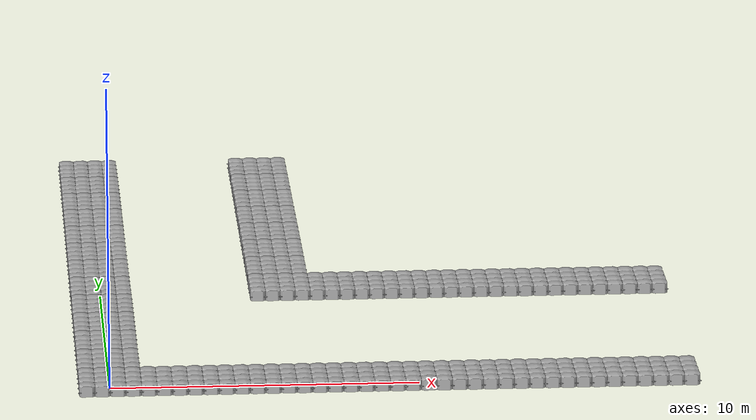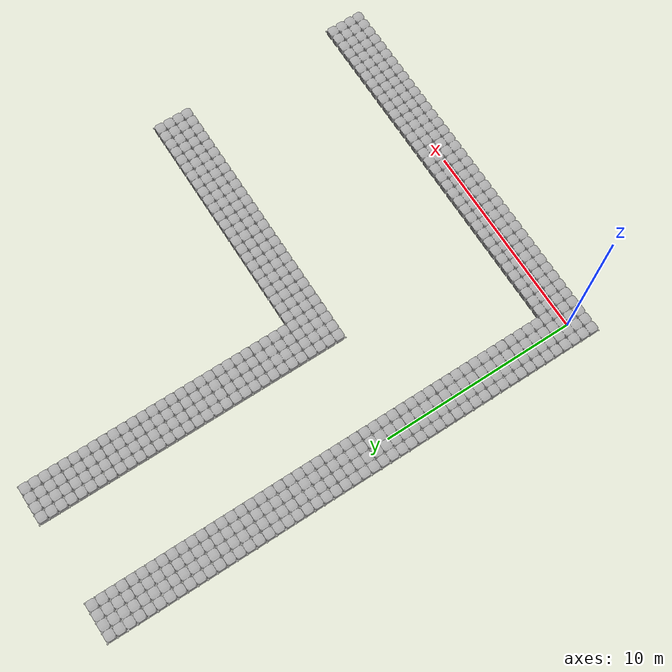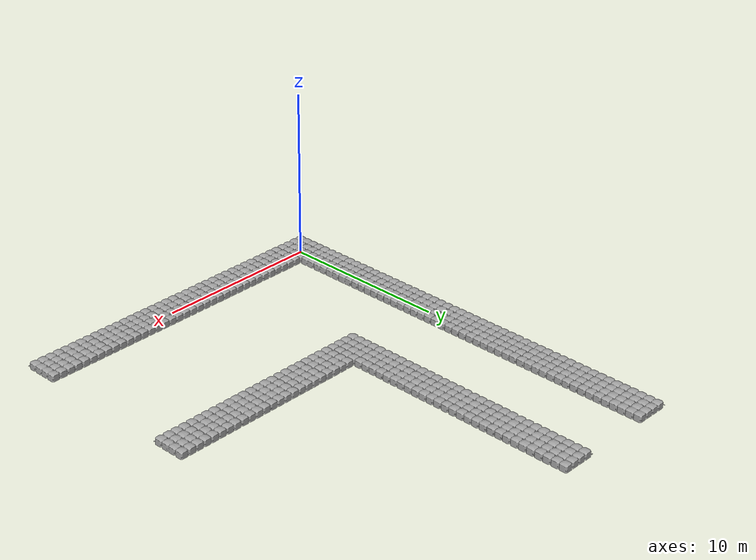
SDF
<?xml version="1.0" ?>
<sdf version="1.6">

  <model name="robotx_dock_2016_base">
    <selfCollide>false</selfCollide>

    <!-- Row 0 -->
    <include>
      <name>dock_block_0_0</name>
      <pose>0 0 0.25 0 0 0</pose>
        <uri>model://dock_block_4x4_dynamic</uri>
    </include>
    <include>
      <name>dock_block_0_1</name>
      <pose>0 2 0.25 0 0 0</pose>
        <uri>model://dock_block_4x4_dynamic</uri>
    </include>
    <include>
      <name>dock_block_0_2</name>
      <pose>0 4 0.25 0 0 0</pose>
        <uri>model://dock_block_4x4_dynamic</uri>
    </include>
    <include>
      <name>dock_block_0_3</name>
      <pose>0 6 0.25 0 0 0</pose>
        <uri>model://dock_block_4x4_dynamic</uri>
    </include>
    <include>
      <name>dock_block_0_4</name>
      <pose>0 8 0.25 0 0 0</pose>
        <uri>model://dock_block_4x4_dynamic</uri>
    </include>
    <include>
      <name>dock_block_0_5</name>
      <pose>0 10 0.25 0 0 0</pose>
        <uri>model://dock_block_4x4_dynamic</uri>
    </include>
    <include>
      <name>dock_block_0_6</name>
      <pose>0 12 0.25 0 0 0</pose>
        <uri>model://dock_block_4x4_dynamic</uri>
    </include>
    <include>
      <name>dock_block_0_7</name>
      <pose>0 14 0.25 0 0 0</pose>
        <uri>model://dock_block_4x4_dynamic</uri>
    </include>
    <include>
      <name>dock_block_0_8</name>
      <pose>0 16 0.25 0 0 0</pose>
        <uri>model://dock_block_4x4_dynamic</uri>
    </include>
    <include>
      <name>dock_block_0_9</name>
      <pose>0 18 0.25 0 0 0</pose>
        <uri>model://dock_block_4x4_dynamic</uri>
    </include>
    <include>
      <name>dock_block_0_10</name>
      <pose>0 20 0.25 0 0 0</pose>
        <uri>model://dock_block_4x4_dynamic</uri>
    </include>
    <include>
      <name>dock_block_0_11</name>
      <pose>0 22 0.25 0 0 0</pose>
        <uri>model://dock_block_4x4_dynamic</uri>
    </include>
    <include>
      <name>dock_block_0_12</name>
      <pose>0 24 0.25 0 0 0</pose>
        <uri>model://dock_block_4x4_dynamic</uri>
    </include>

    <!-- Row 1 -->
    <include>
      <name>dock_block_1_0</name>
      <pose>2 0 0.25 0 0 0</pose>
        <uri>model://dock_block_4x4_dynamic</uri>
    </include>

    <!-- Row 2 -->
    <include>
      <name>dock_block_2_0</name>
      <pose>4 0 0.25 0 0 0</pose>
        <uri>model://dock_block_4x4_dynamic</uri>
    </include>

    <!-- Row 3 -->
    <include>
      <name>dock_block_3_0</name>
      <pose>6 0 0.25 0 0 0</pose>
        <uri>model://dock_block_4x4_dynamic</uri>
    </include>
    <include>
      <name>dock_block_3_5</name>
      <pose>6 10 0.25 0 0 0</pose>
        <uri>model://dock_block_4x4_dynamic</uri>
    </include>
    <include>
      <name>dock_block_3_6</name>
      <pose>6 12 0.25 0 0 0</pose>
        <uri>model://dock_block_4x4_dynamic</uri>
    </include>
    <include>
      <name>dock_block_3_7</name>
      <pose>6 14 0.25 0 0 0</pose>
        <uri>model://dock_block_4x4_dynamic</uri>
    </include>
    <include>
      <name>dock_block_3_8</name>
      <pose>6 16 0.25 0 0 0</pose>
        <uri>model://dock_block_4x4_dynamic</uri>
    </include>
    <include>
      <name>dock_block_3_9</name>
      <pose>6 18 0.25 0 0 0</pose>
        <uri>model://dock_block_4x4_dynamic</uri>
    </include>
    <include>
      <name>dock_block_3_10</name>
      <pose>6 20 0.25 0 0 0</pose>
        <uri>model://dock_block_4x4_dynamic</uri>
    </include>
    <include>
      <name>dock_block_3_11</name>
      <pose>6 22 0.25 0 0 0</pose>
        <uri>model://dock_block_4x4_dynamic</uri>
    </include>
    <include>
      <name>dock_block_3_12</name>
      <pose>6 24 0.25 0 0 0</pose>
        <uri>model://dock_block_4x4_dynamic</uri>
    </include>

    <!-- Row 4 -->
    <include>
      <name>dock_block_4_0</name>
      <pose>8 0 0.25 0 0 0</pose>
        <uri>model://dock_block_4x4_dynamic</uri>
    </include>
    <include>
      <name>dock_block_4_5</name>
      <pose>8 10 0.25 0 0 0</pose>
        <uri>model://dock_block_4x4_dynamic</uri>
    </include>

    <!-- Row 5 -->
    <include>
      <name>dock_block_5_0</name>
      <pose>10 0 0.25 0 0 0</pose>
        <uri>model://dock_block_4x4_dynamic</uri>
    </include>
    <include>
      <name>dock_block_5_5</name>
      <pose>10 10 0.25 0 0 0</pose>
        <uri>model://dock_block_4x4_dynamic</uri>
    </include>

    <!-- Row 6 -->
    <include>
      <name>dock_block_6_0</name>
      <pose>12 0 0.25 0 0 0</pose>
        <uri>model://dock_block_4x4_dynamic</uri>
    </include>
    <include>
      <name>dock_block_6_5</name>
      <pose>12 10 0.25 0 0 0</pose>
        <uri>model://dock_block_4x4_dynamic</uri>
    </include>

    <!-- Row 7 -->
    <include>
      <name>dock_block_7_0</name>
      <pose>14 0 0.25 0 0 0</pose>
        <uri>model://dock_block_4x4_dynamic</uri>
    </include>
    <include>
      <name>dock_block_7_5</name>
      <pose>14 10 0.25 0 0 0</pose>
        <uri>model://dock_block_4x4_dynamic</uri>
    </include>

    <!-- Row 8 -->
    <include>
      <name>dock_block_8_0</name>
      <pose>16 0 0.25 0 0 0</pose>
        <uri>model://dock_block_4x4_dynamic</uri>
    </include>
    <include>
      <name>dock_block_8_5</name>
      <pose>16 10 0.25 0 0 0</pose>
        <uri>model://dock_block_4x4_dynamic</uri>
    </include>

    <!-- Row 9 -->
    <include>
      <name>dock_block_9_0</name>
      <pose>18 0 0.25 0 0 0</pose>
        <uri>model://dock_block_4x4_dynamic</uri>
    </include>
    <include>
      <name>dock_block_9_5</name>
      <pose>18 10 0.25 0 0 0</pose>
        <uri>model://dock_block_4x4_dynamic</uri>
    </include>

    <!-- Add joints across rows -->

    <!-- Row 0 -->
    <joint name="0_0_to_0_1" type="revolute">
      <pose> 0  1.0 0 0 0 0</pose>
      <parent>dock_block_0_1::link</parent>
      <child>dock_block_0_0::link</child>
      <axis>
        <limit>
          <lower>-0.1</lower>
          <upper>0.1</upper>
        </limit>
        <xyz>1 0 0</xyz>
      </axis>
    </joint>
    <joint name="0_1_to_0_2" type="revolute">
      <pose> 0  1.0 0 0 0 0</pose>
      <parent>dock_block_0_2::link</parent>
      <child>dock_block_0_1::link</child>
      <axis>
        <limit>
          <lower>-0.1</lower>
          <upper>0.1</upper>
        </limit>
        <xyz>1 0 0</xyz>
      </axis>
    </joint>
    <joint name="0_2_to_0_3" type="revolute">
      <pose> 0  1.0 0 0 0 0</pose>
      <parent>dock_block_0_3::link</parent>
      <child>dock_block_0_2::link</child>
      <axis>
        <limit>
          <lower>-0.1</lower>
          <upper>0.1</upper>
        </limit>
        <xyz>1 0 0</xyz>
      </axis>
    </joint>
    <joint name="0_3_to_0_4" type="revolute">
      <pose> 0  1.0 0 0 0 0</pose>
      <parent>dock_block_0_4::link</parent>
      <child>dock_block_0_3::link</child>
      <axis>
        <limit>
          <lower>-0.1</lower>
          <upper>0.1</upper>
        </limit>
        <xyz>1 0 0</xyz>
      </axis>
    </joint>
    <joint name="0_4_to_0_5" type="revolute">
      <pose> 0  1.0 0 0 0 0</pose>
      <parent>dock_block_0_5::link</parent>
      <child>dock_block_0_4::link</child>
      <axis>
        <limit>
          <lower>-0.1</lower>
          <upper>0.1</upper>
        </limit>
        <xyz>1 0 0</xyz>
      </axis>
    </joint>
    <joint name="0_5_to_0_6" type="revolute">
      <pose> 0  1.0 0 0 0 0</pose>
      <parent>dock_block_0_6::link</parent>
      <child>dock_block_0_5::link</child>
      <axis>
        <limit>
          <lower>-0.1</lower>
          <upper>0.1</upper>
        </limit>
        <xyz>1 0 0</xyz>
      </axis>
    </joint>
    <joint name="0_6_to_0_7" type="revolute">
      <pose> 0  1.0 0 0 0 0</pose>
      <parent>dock_block_0_7::link</parent>
      <child>dock_block_0_6::link</child>
      <axis>
        <limit>
          <lower>-0.1</lower>
          <upper>0.1</upper>
        </limit>
        <xyz>1 0 0</xyz>
      </axis>
    </joint>
    <joint name="0_7_to_0_8" type="revolute">
      <pose> 0  1.0 0 0 0 0</pose>
      <parent>dock_block_0_8::link</parent>
      <child>dock_block_0_7::link</child>
      <axis>
        <limit>
          <lower>-0.1</lower>
          <upper>0.1</upper>
        </limit>
        <xyz>1 0 0</xyz>
      </axis>
    </joint>
    <joint name="0_8_to_0_9" type="revolute">
      <pose> 0  1.0 0 0 0 0</pose>
      <parent>dock_block_0_9::link</parent>
      <child>dock_block_0_8::link</child>
      <axis>
        <limit>
          <lower>-0.1</lower>
          <upper>0.1</upper>
        </limit>
        <xyz>1 0 0</xyz>
      </axis>
    </joint>
    <joint name="0_9_to_0_10" type="revolute">
      <pose> 0  1.0 0 0 0 0</pose>
      <parent>dock_block_0_10::link</parent>
      <child>dock_block_0_9::link</child>
      <axis>
        <limit>
          <lower>-0.1</lower>
          <upper>0.1</upper>
        </limit>
        <xyz>1 0 0</xyz>
      </axis>
    </joint>
    <joint name="0_10_to_0_11" type="revolute">
      <pose> 0  1.0 0 0 0 0</pose>
      <parent>dock_block_0_11::link</parent>
      <child>dock_block_0_10::link</child>
      <axis>
        <limit>
          <lower>-0.1</lower>
          <upper>0.1</upper>
        </limit>
        <xyz>1 0 0</xyz>
      </axis>
    </joint>
    <joint name="0_11_to_0_12" type="revolute">
      <pose> 0  1.0 0 0 0 0</pose>
      <parent>dock_block_0_12::link</parent>
      <child>dock_block_0_11::link</child>
      <axis>
        <limit>
          <lower>-0.1</lower>
          <upper>0.1</upper>
        </limit>
        <xyz>1 0 0</xyz>
      </axis>
    </joint>

    <!-- Row 1 -->

    <!-- Row 2 -->

    <!-- Row 3 -->
    <joint name="3_5_to_3_6" type="revolute">
      <pose> 0  1.0 0 0 0 0</pose>
      <parent>dock_block_3_6::link</parent>
      <child>dock_block_3_5::link</child>
      <axis>
        <limit>
          <lower>-0.1</lower>
          <upper>0.1</upper>
        </limit>
        <xyz>1 0 0</xyz>
      </axis>
    </joint>
    <joint name="3_6_to_3_7" type="revolute">
      <pose> 0  1.0 0 0 0 0</pose>
      <parent>dock_block_3_7::link</parent>
      <child>dock_block_3_6::link</child>
      <axis>
        <limit>
          <lower>-0.1</lower>
          <upper>0.1</upper>
        </limit>
        <xyz>1 0 0</xyz>
      </axis>
    </joint>
    <joint name="3_7_to_3_8" type="revolute">
      <pose> 0  1.0 0 0 0 0</pose>
      <parent>dock_block_3_8::link</parent>
      <child>dock_block_3_7::link</child>
      <axis>
        <limit>
          <lower>-0.1</lower>
          <upper>0.1</upper>
        </limit>
        <xyz>1 0 0</xyz>
      </axis>
    </joint>
    <joint name="3_8_to_3_9" type="revolute">
      <pose> 0  1.0 0 0 0 0</pose>
      <parent>dock_block_3_9::link</parent>
      <child>dock_block_3_8::link</child>
      <axis>
        <limit>
          <lower>-0.1</lower>
          <upper>0.1</upper>
        </limit>
        <xyz>1 0 0</xyz>
      </axis>
    </joint>
    <joint name="3_9_to_3_10" type="revolute">
      <pose> 0  1.0 0 0 0 0</pose>
      <parent>dock_block_3_10::link</parent>
      <child>dock_block_3_9::link</child>
      <axis>
        <limit>
          <lower>-0.1</lower>
          <upper>0.1</upper>
        </limit>
        <xyz>1 0 0</xyz>
      </axis>
    </joint>
    <joint name="3_10_to_3_11" type="revolute">
      <pose> 0  1.0 0 0 0 0</pose>
      <parent>dock_block_3_11::link</parent>
      <child>dock_block_3_10::link</child>
      <axis>
        <limit>
          <lower>-0.1</lower>
          <upper>0.1</upper>
        </limit>
        <xyz>1 0 0</xyz>
      </axis>
    </joint>
    <joint name="3_11_to_3_12" type="revolute">
      <pose> 0  1.0 0 0 0 0</pose>
      <parent>dock_block_3_12::link</parent>
      <child>dock_block_3_11::link</child>
      <axis>
        <limit>
          <lower>-0.1</lower>
          <upper>0.1</upper>
        </limit>
        <xyz>1 0 0</xyz>
      </axis>
    </joint>

    <!-- Row 4 -->

    <!-- Row 5 -->

    <!-- Row 6 -->

    <!-- Row 7 -->

    <!-- Row 8 -->

    <!-- Row 9 -->

    <!-- Add joints across columns -->

    <!-- Column 0 -->
    <joint name="1_0_to_0_0" type="revolute">
      <pose> 1.0 0 0 0 0 0</pose>
      <parent>dock_block_1_0::link</parent>
      <child>dock_block_0_0::link</child>
      <axis>
        <limit>
          <lower>-0.1</lower>
          <upper>0.1</upper>
        </limit>
        <xyz>0 1 0</xyz>
      </axis>
    </joint>
    <joint name="2_0_to_1_0" type="revolute">
      <pose> 1.0 0 0 0 0 0</pose>
      <parent>dock_block_2_0::link</parent>
      <child>dock_block_1_0::link</child>
      <axis>
        <limit>
          <lower>-0.1</lower>
          <upper>0.1</upper>
        </limit>
        <xyz>0 1 0</xyz>
      </axis>
    </joint>
    <joint name="3_0_to_2_0" type="revolute">
      <pose> 1.0 0 0 0 0 0</pose>
      <parent>dock_block_3_0::link</parent>
      <child>dock_block_2_0::link</child>
      <axis>
        <limit>
          <lower>-0.1</lower>
          <upper>0.1</upper>
        </limit>
        <xyz>0 1 0</xyz>
      </axis>
    </joint>
    <joint name="4_0_to_3_0" type="revolute">
      <pose> 1.0 0 0 0 0 0</pose>
      <parent>dock_block_4_0::link</parent>
      <child>dock_block_3_0::link</child>
      <axis>
        <limit>
          <lower>-0.1</lower>
          <upper>0.1</upper>
        </limit>
        <xyz>0 1 0</xyz>
      </axis>
    </joint>
    <joint name="5_0_to_4_0" type="revolute">
      <pose> 1.0 0 0 0 0 0</pose>
      <parent>dock_block_5_0::link</parent>
      <child>dock_block_4_0::link</child>
      <axis>
        <limit>
          <lower>-0.1</lower>
          <upper>0.1</upper>
        </limit>
        <xyz>0 1 0</xyz>
      </axis>
    </joint>
    <joint name="6_0_to_5_0" type="revolute">
      <pose> 1.0 0 0 0 0 0</pose>
      <parent>dock_block_6_0::link</parent>
      <child>dock_block_5_0::link</child>
      <axis>
        <limit>
          <lower>-0.1</lower>
          <upper>0.1</upper>
        </limit>
        <xyz>0 1 0</xyz>
      </axis>
    </joint>
    <joint name="7_0_to_6_0" type="revolute">
      <pose> 1.0 0 0 0 0 0</pose>
      <parent>dock_block_7_0::link</parent>
      <child>dock_block_6_0::link</child>
      <axis>
        <limit>
          <lower>-0.1</lower>
          <upper>0.1</upper>
        </limit>
        <xyz>0 1 0</xyz>
      </axis>
    </joint>
    <joint name="8_0_to_7_0" type="revolute">
      <pose> 1.0 0 0 0 0 0</pose>
      <parent>dock_block_8_0::link</parent>
      <child>dock_block_7_0::link</child>
      <axis>
        <limit>
          <lower>-0.1</lower>
          <upper>0.1</upper>
        </limit>
        <xyz>0 1 0</xyz>
      </axis>
    </joint>
    <joint name="9_0_to_8_0" type="revolute">
      <pose> 1.0 0 0 0 0 0</pose>
      <parent>dock_block_9_0::link</parent>
      <child>dock_block_8_0::link</child>
      <axis>
        <limit>
          <lower>-0.1</lower>
          <upper>0.1</upper>
        </limit>
        <xyz>0 1 0</xyz>
      </axis>
    </joint>

    <!-- Column 1 -->

    <!-- Column 2 -->

    <!-- Column 3 -->

    <!-- Column 4 -->

    <!-- Column 5 -->
    <joint name="4_5_to_3_5" type="revolute">
      <pose> 1.0 0 0 0 0 0</pose>
      <parent>dock_block_4_5::link</parent>
      <child>dock_block_3_5::link</child>
      <axis>
        <limit>
          <lower>-0.1</lower>
          <upper>0.1</upper>
        </limit>
        <xyz>0 1 0</xyz>
      </axis>
    </joint>
    <joint name="5_5_to_4_5" type="revolute">
      <pose> 1.0 0 0 0 0 0</pose>
      <parent>dock_block_5_5::link</parent>
      <child>dock_block_4_5::link</child>
      <axis>
        <limit>
          <lower>-0.1</lower>
          <upper>0.1</upper>
        </limit>
        <xyz>0 1 0</xyz>
      </axis>
    </joint>
    <joint name="6_5_to_5_5" type="revolute">
      <pose> 1.0 0 0 0 0 0</pose>
      <parent>dock_block_6_5::link</parent>
      <child>dock_block_5_5::link</child>
      <axis>
        <limit>
          <lower>-0.1</lower>
          <upper>0.1</upper>
        </limit>
        <xyz>0 1 0</xyz>
      </axis>
    </joint>
    <joint name="7_5_to_6_5" type="revolute">
      <pose> 1.0 0 0 0 0 0</pose>
      <parent>dock_block_7_5::link</parent>
      <child>dock_block_6_5::link</child>
      <axis>
        <limit>
          <lower>-0.1</lower>
          <upper>0.1</upper>
        </limit>
        <xyz>0 1 0</xyz>
      </axis>
    </joint>
    <joint name="8_5_to_7_5" type="revolute">
      <pose> 1.0 0 0 0 0 0</pose>
      <parent>dock_block_8_5::link</parent>
      <child>dock_block_7_5::link</child>
      <axis>
        <limit>
          <lower>-0.1</lower>
          <upper>0.1</upper>
        </limit>
        <xyz>0 1 0</xyz>
      </axis>
    </joint>
    <joint name="9_5_to_8_5" type="revolute">
      <pose> 1.0 0 0 0 0 0</pose>
      <parent>dock_block_9_5::link</parent>
      <child>dock_block_8_5::link</child>
      <axis>
        <limit>
          <lower>-0.1</lower>
          <upper>0.1</upper>
        </limit>
        <xyz>0 1 0</xyz>
      </axis>
    </joint>

    <!-- Column 6 -->

    <!-- Column 7 -->

    <!-- Column 8 -->

    <!-- Column 9 -->

    <!-- Column 10 -->

    <!-- Column 11 -->

    <!-- Column 12 -->

  </model>
</sdf>

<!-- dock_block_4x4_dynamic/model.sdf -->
<sdf version="1.5">
  <model name="dock_block_4x4">
    <static>false</static>
    <link name="link">
      <velocity_decay>
        <linear>0.001</linear>
        <angular>0.001</angular>
      </velocity_decay>
       <inertial>
        <pose>0 0 0 0 0 0</pose>
        <mass>160</mass>
        <inertia>
          <ixx>55.467</ixx>
          <ixy>0</ixy>
          <ixz>0</ixz>
          <iyy>55.467</iyy>
          <iyz>0</iyz>
          <izz>106.67</izz>
        </inertia>
      </inertial>
      <collision name="collision">
        <pose>0 0 0 0 0 0</pose>
        <geometry>
          <box>
            <size>2 2 0.4</size>
          </box>
        </geometry>
      </collision>
      <visual name="visual">
        <pose>-0.25 0.25 0.2 0 0 0 </pose>
        <geometry>
          <mesh>
            <uri>file://dock_block_4x4/mesh/dock_block_4x4.dae</uri>
          </mesh>
        </geometry>
      </visual>
    </link>
    <plugin name="BuoyancyPlugin" filename="libbuoyancy_gazebo_plugin.so">
      <wave_model>ocean_waves</wave_model>
      <fluid_density>1000</fluid_density>
      <fluid_level>0</fluid_level>
      <linear_drag>1000.0</linear_drag>
      <angular_drag>200.0</angular_drag>
      <buoyancy name="buoyancy_base">
        <link_name>link</link_name>
      	<pose>0 0 0.35 0 0 0</pose>
        <geometry>
					<sphere>
            <radius>0.72557</radius>
          </sphere>
				</geometry>
      </buoyancy>
    </plugin>
  </model>
</sdf>
